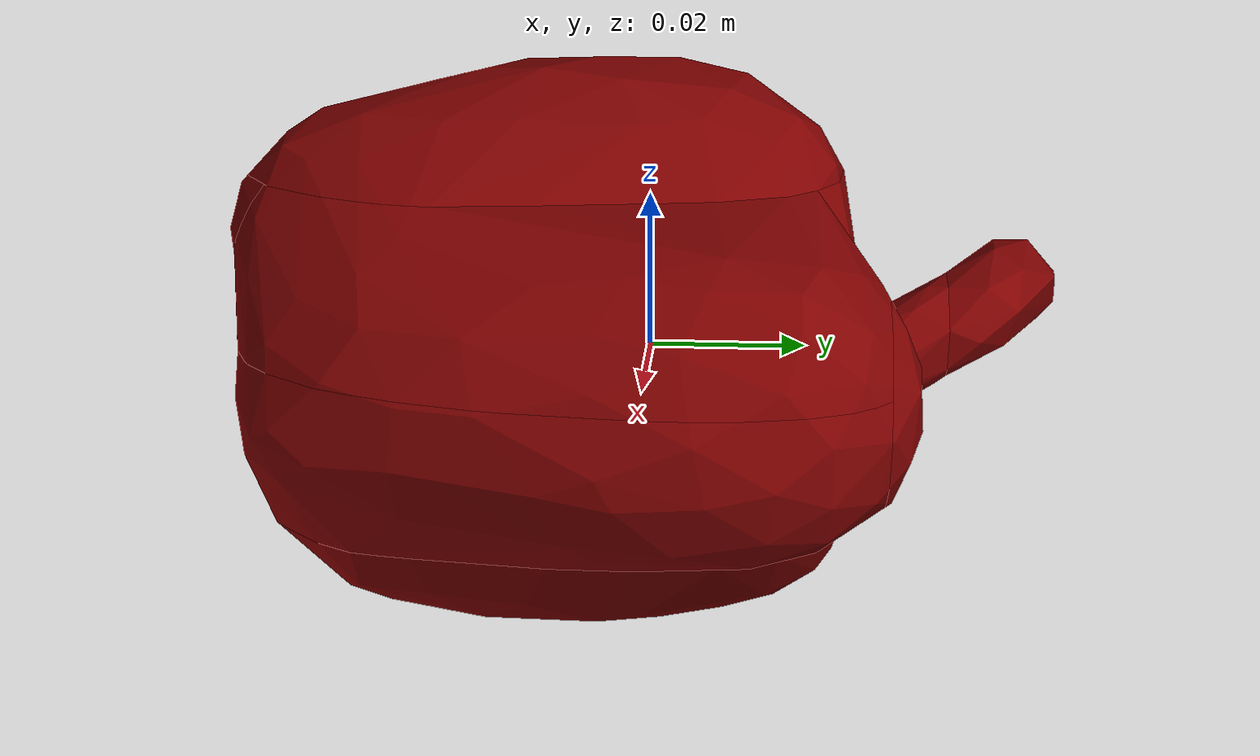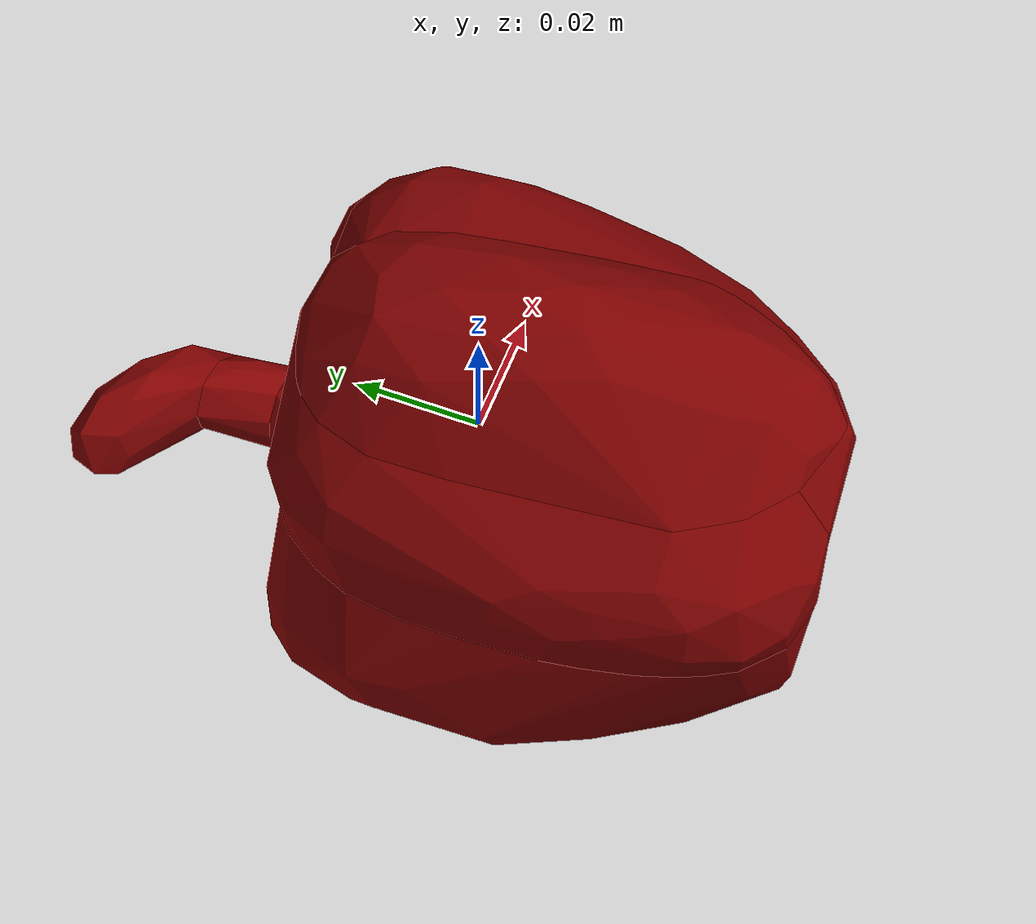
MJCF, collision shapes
<?xml version='1.0' encoding='utf-8'?>
<mujoco model="bell_pepper_0">
  <asset>
    <mesh file="visual/model_normalized_0.obj" name="model_normalized_0_vis" scale="0.10999999999999996 0.10999999999999996 0.10999999999999996" refquat="0.7071067811865475 0.7071067811865475 5.551115123125783e-17 0.0" />
    <texture type="2d" name="image0" file="visual/image0.png" />
    <material name="Layer_1_mtl_001" texture="image0" specular="0.5" shininess="0.25" />
    <mesh file="collision/collision_mesh_collision_0.obj" name="bell_collision_mesh_0" scale="0.10999999999999996 0.10999999999999996 0.10999999999999996" refquat="0.7071067811865475 0.7071067811865475 5.551115123125783e-17 0.0" />
    <mesh file="collision/collision_mesh_collision_1.obj" name="bell_collision_mesh_1" scale="0.10999999999999996 0.10999999999999996 0.10999999999999996" refquat="0.7071067811865475 0.7071067811865475 5.551115123125783e-17 0.0" />
    <mesh file="collision/collision_mesh_collision_2.obj" name="bell_collision_mesh_2" scale="0.10999999999999996 0.10999999999999996 0.10999999999999996" refquat="0.7071067811865475 0.7071067811865475 5.551115123125783e-17 0.0" />
    <mesh file="collision/collision_mesh_collision_3.obj" name="bell_collision_mesh_3" scale="0.10999999999999996 0.10999999999999996 0.10999999999999996" refquat="0.7071067811865475 0.7071067811865475 5.551115123125783e-17 0.0" />
    <mesh file="collision/collision_mesh_collision_4.obj" name="bell_collision_mesh_4" scale="0.10999999999999996 0.10999999999999996 0.10999999999999996" refquat="0.7071067811865475 0.7071067811865475 5.551115123125783e-17 0.0" />
    <mesh file="collision/collision_mesh_collision_5.obj" name="bell_collision_mesh_5" scale="0.10999999999999996 0.10999999999999996 0.10999999999999996" refquat="0.7071067811865475 0.7071067811865475 5.551115123125783e-17 0.0" />
    <mesh file="collision/collision_mesh_collision_6.obj" name="bell_collision_mesh_6" scale="0.10999999999999996 0.10999999999999996 0.10999999999999996" refquat="0.7071067811865475 0.7071067811865475 5.551115123125783e-17 0.0" />
    <mesh file="collision/collision_mesh_collision_7.obj" name="bell_collision_mesh_7" scale="0.10999999999999996 0.10999999999999996 0.10999999999999996" refquat="0.7071067811865475 0.7071067811865475 5.551115123125783e-17 0.0" />
    <mesh file="collision/collision_mesh_collision_8.obj" name="bell_collision_mesh_8" scale="0.10999999999999996 0.10999999999999996 0.10999999999999996" refquat="0.7071067811865475 0.7071067811865475 5.551115123125783e-17 0.0" />
    <mesh file="collision/collision_mesh_collision_9.obj" name="bell_collision_mesh_9" scale="0.10999999999999996 0.10999999999999996 0.10999999999999996" refquat="0.7071067811865475 0.7071067811865475 5.551115123125783e-17 0.0" />
    <mesh file="collision/collision_mesh_collision_10.obj" name="bell_collision_mesh_10" scale="0.10999999999999996 0.10999999999999996 0.10999999999999996" refquat="0.7071067811865475 0.7071067811865475 5.551115123125783e-17 0.0" />
    <mesh file="collision/collision_mesh_collision_11.obj" name="bell_collision_mesh_11" scale="0.10999999999999996 0.10999999999999996 0.10999999999999996" refquat="0.7071067811865475 0.7071067811865475 5.551115123125783e-17 0.0" />
    <mesh file="collision/collision_mesh_collision_12.obj" name="bell_collision_mesh_12" scale="0.10999999999999996 0.10999999999999996 0.10999999999999996" refquat="0.7071067811865475 0.7071067811865475 5.551115123125783e-17 0.0" />
  </asset>
  <default>
    <default class="region">
      <geom group="1" conaffinity="0" contype="0" rgba="0 1 0 0" />
    </default>
    <default class="collision">
      <geom group="0" rgba="0.5 0 0 0.5" density="1000.0" />
    </default>
  </default>
  <worldbody>
    <body>
      <body name="object">
        <geom solimp="0.998 0.998 0.001" solref="0.001 1" density="100" friction="0.95 0.3 0.1" type="mesh" mesh="model_normalized_0_vis" conaffinity="0" contype="0" group="1" material="Layer_1_mtl_001" />
        <geom class="region" name="reg_bbox" type="box" pos="-1.785300000000655e-06 -7.854000000018233e-07 -7.078499999998986e-07" size="0.04200876019999998 0.05499921129999998 0.037062303849999985" />
        <geom mesh="bell_collision_mesh_0" type="mesh" class="collision" />
        <geom mesh="bell_collision_mesh_1" type="mesh" class="collision" />
        <geom mesh="bell_collision_mesh_2" type="mesh" class="collision" />
        <geom mesh="bell_collision_mesh_3" type="mesh" class="collision" />
        <geom mesh="bell_collision_mesh_4" type="mesh" class="collision" />
        <geom mesh="bell_collision_mesh_5" type="mesh" class="collision" />
        <geom mesh="bell_collision_mesh_6" type="mesh" class="collision" />
        <geom mesh="bell_collision_mesh_7" type="mesh" class="collision" />
        <geom mesh="bell_collision_mesh_8" type="mesh" class="collision" />
        <geom mesh="bell_collision_mesh_9" type="mesh" class="collision" />
        <geom mesh="bell_collision_mesh_10" type="mesh" class="collision" />
        <geom mesh="bell_collision_mesh_11" type="mesh" class="collision" />
        <geom mesh="bell_collision_mesh_12" type="mesh" class="collision" />
      </body>
    <site rgba="0 0 0 0" size="0.005" pos="0 0 -0.037063012" name="bottom_site" /><site rgba="0 0 0 0" size="0.005" pos="0 0 0.037061596" name="top_site" /><site rgba="0 0 0 0" size="0.005" pos="0.054999997 0.054999997 0" name="horizontal_radius_site" /></body>
  </worldbody>
</mujoco>
